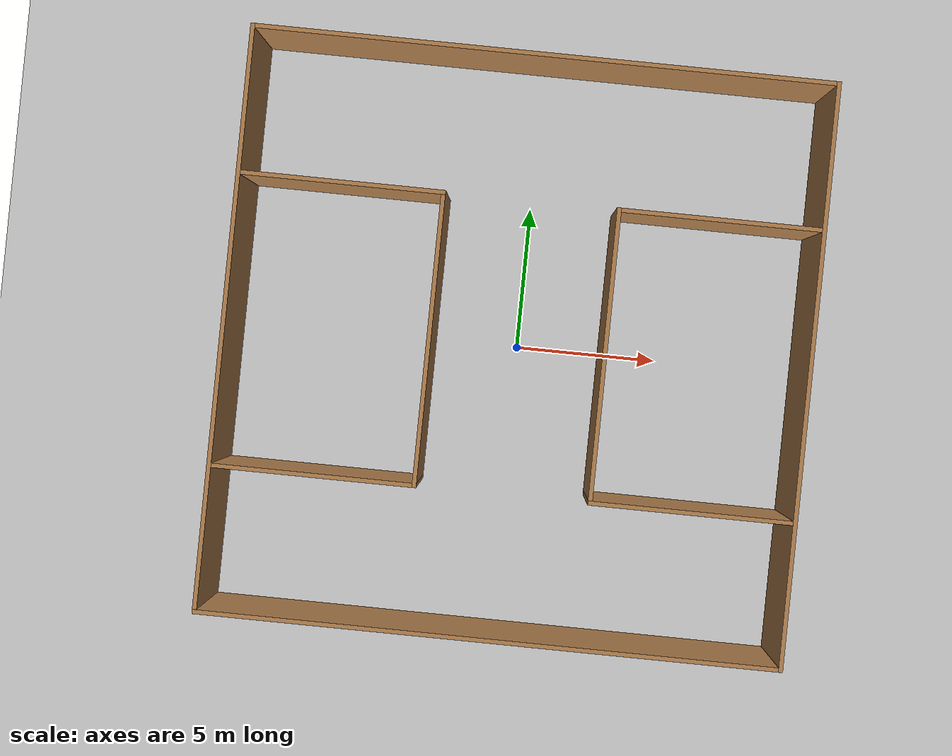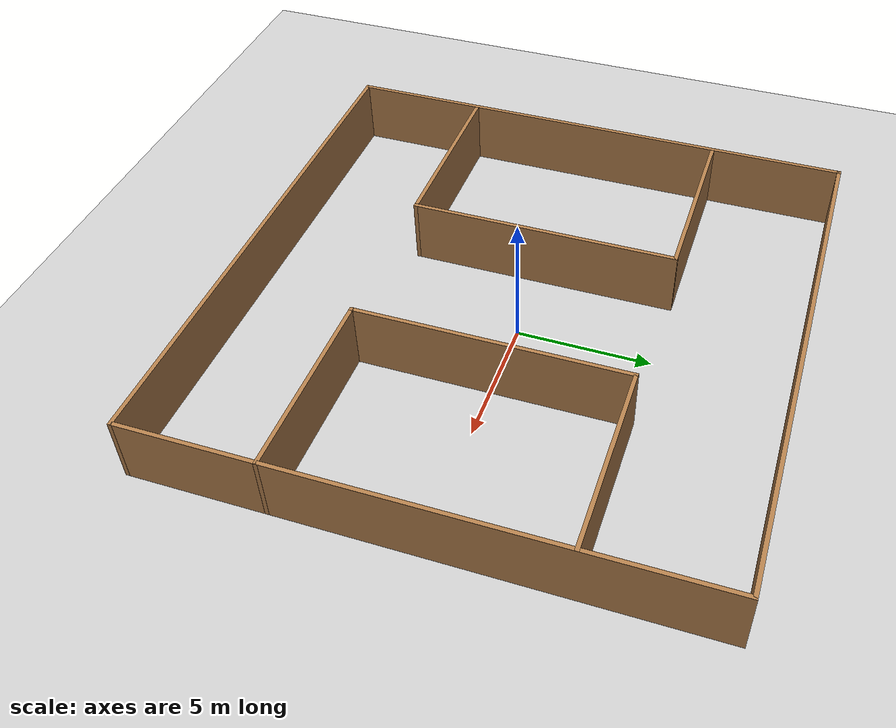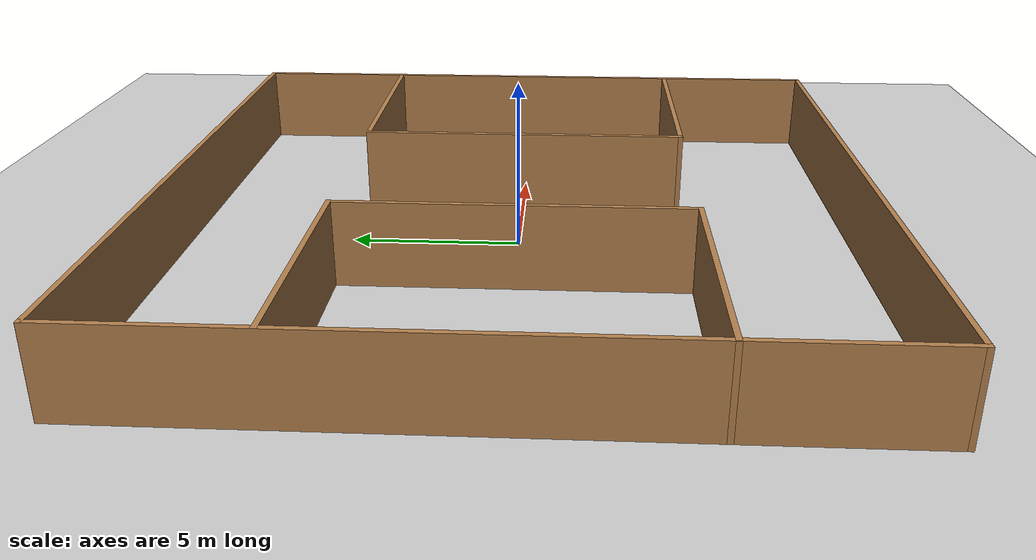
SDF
<sdf version="1.6">
 <world name="default">
  <light name="sun" type="directional">
   <pose>0 0 10 0 -0 0</pose>
   <diffuse>0.8 0.8 0.8 1</diffuse>
   <specular>0.2 0.2 0.2 1</specular>
   <attenuation>
    <range>1000</range>
    <constant>0.9</constant>
    <linear>0.01</linear>
    <quadratic>0.001</quadratic>
   </attenuation>
   <direction>-0.5 0.1 -0.9</direction>
  </light>
  <model name="ground_plane">
   <static>1</static>
   <link name="link">
    <collision name="collision">
     <geometry><plane><normal>0 0 1</normal><size>100 100</size></plane></geometry>
     <surface>
      <contact><collide_bitmask>65535</collide_bitmask></contact>
      <friction><ode><mu>100</mu><mu2>50</mu2></ode></friction>
     </surface>
    </collision>
    <visual name="visual">
     <cast_shadows>0</cast_shadows>
     <geometry><plane><normal>0 0 1</normal><size>100 100</size></plane></geometry>
     <material>
      <script><uri>file://media/materials/scripts/gazebo.material</uri><name>Gazebo/Grey</name></script>
     </material>
    </visual>
   </link>
  </model>
  <gravity>0 0 -9.8</gravity>
  <magnetic_field>6e-06 2.3e-05 -4.2e-05</magnetic_field>
  <atmosphere type="adiabatic"/>
  <physics name="default_physics" default="0" type="ode">
   <max_step_size>0.001</max_step_size>
   <real_time_factor>1</real_time_factor>
   <real_time_update_rate>1000</real_time_update_rate>
  </physics>
  <scene><ambient>0.4 0.4 0.4 1</ambient><background>0.7 0.7 0.7 1</background><shadows>1</shadows></scene>
  <audio><device>default</device></audio>
  <spherical_coordinates>
   <surface_model>EARTH_WGS84</surface_model>
   <latitude_deg>0</latitude_deg>
   <longitude_deg>0</longitude_deg>
   <elevation>0</elevation>
   <heading_deg>0</heading_deg>
  </spherical_coordinates>
  <model name="surroundings">
   <link name="Wall_0">
    <collision name="Wall_0_Collision">
     <geometry><box><size>20.15 0.15 2.5</size></box></geometry>
     <pose>0 0 1.25 0 -0 0</pose>
    </collision>
    <visual name="Wall_0_Visual">
     <pose>0 0 1.25 0 -0 0</pose>
     <geometry><box><size>20.15 0.15 2.5</size></box></geometry>
     <material>
      <script><uri>file://media/materials/scripts/gazebo.material</uri><name>Gazebo/Wood</name></script>
      <ambient>1 1 1 1</ambient>
     </material>
     <meta><layer>0</layer></meta>
    </visual>
    <pose>10 0 0 0 -0 -1.5708</pose>
   </link>
   <link name="Wall_1">
    <collision name="Wall_1_Collision">
     <geometry><box><size>20.15 0.15 2.5</size></box></geometry>
     <pose>0 0 1.25 0 -0 0</pose>
    </collision>
    <visual name="Wall_1_Visual">
     <pose>0 0 1.25 0 -0 0</pose>
     <geometry><box><size>20.15 0.15 2.5</size></box></geometry>
     <material>
      <script><uri>file://media/materials/scripts/gazebo.material</uri><name>Gazebo/Wood</name></script>
      <ambient>1 1 1 1</ambient>
     </material>
     <meta><layer>0</layer></meta>
    </visual>
    <pose>0 -10 0 0 -0 3.14159</pose>
   </link>
   <link name="Wall_2">
    <collision name="Wall_2_Collision">
     <geometry><box><size>20.15 0.15 2.5</size></box></geometry>
     <pose>0 0 1.25 0 -0 0</pose>
    </collision>
    <visual name="Wall_2_Visual">
     <pose>0 0 1.25 0 -0 0</pose>
     <geometry><box><size>20.15 0.15 2.5</size></box></geometry>
     <material>
      <script><uri>file://media/materials/scripts/gazebo.material</uri><name>Gazebo/Wood</name></script>
      <ambient>1 1 1 1</ambient>
     </material>
     <meta><layer>0</layer></meta>
    </visual>
    <pose>-10 0 0 0 -0 1.5708</pose>
   </link>
   <link name="Wall_3">
    <collision name="Wall_3_Collision">
     <geometry><box><size>20.15 0.15 2.5</size></box></geometry>
     <pose>0 0 1.25 0 -0 0</pose>
    </collision>
    <visual name="Wall_3_Visual">
     <pose>0 0 1.25 0 -0 0</pose>
     <geometry><box><size>20.15 0.15 2.5</size></box></geometry>
     <material>
      <script><uri>file://media/materials/scripts/gazebo.material</uri><name>Gazebo/Wood</name></script>
      <ambient>1 1 1 1</ambient>
     </material>
     <meta><layer>0</layer></meta>
    </visual>
    <pose>0 10 0 0 -0 0</pose>
   </link>
   <static>1</static>
  </model>
  <model name="model1">
   <link name="Wall_10">
    <collision name="Wall_10_Collision">
     <geometry><box><size>7.15 0.15 2.5</size></box></geometry>
     <pose>0 0 1.25 0 -0 0</pose>
    </collision>
    <visual name="Wall_10_Visual">
     <pose>0 0 1.25 0 -0 0</pose>
     <geometry><box><size>7.15 0.15 2.5</size></box></geometry>
     <material>
      <script><uri>file://media/materials/scripts/gazebo.material</uri><name>Gazebo/Wood</name></script>
      <ambient>1 1 1 1</ambient>
     </material>
     <meta><layer>0</layer></meta>
    </visual>
    <pose>6.5 -5 0 0 -0 3.14159</pose>
   </link>
   <link name="Wall_11">
    <collision name="Wall_11_Collision">
     <geometry><box><size>10.15 0.15 2.5</size></box></geometry>
     <pose>0 0 1.25 0 -0 0</pose>
    </collision>
    <visual name="Wall_11_Visual">
     <pose>0 0 1.25 0 -0 0</pose>
     <geometry><box><size>10.15 0.15 2.5</size></box></geometry>
     <material>
      <script><uri>file://media/materials/scripts/gazebo.material</uri><name>Gazebo/Wood</name></script>
      <ambient>1 1 1 1</ambient>
     </material>
     <meta><layer>0</layer></meta>
    </visual>
    <pose>3 0 0 0 -0 1.5708</pose>
   </link>
   <link name="Wall_12">
    <collision name="Wall_12_Collision">
     <geometry><box><size>7.15 0.15 2.5</size></box></geometry>
     <pose>0 0 1.25 0 -0 0</pose>
    </collision>
    <visual name="Wall_12_Visual">
     <pose>0 0 1.25 0 -0 0</pose>
     <geometry><box><size>7.15 0.15 2.5</size></box></geometry>
     <material>
      <script><uri>file://media/materials/scripts/gazebo.material</uri><name>Gazebo/Wood</name></script>
      <ambient>1 1 1 1</ambient>
     </material>
     <meta><layer>0</layer></meta>
    </visual>
    <pose>6.5 5 0 0 -0 0</pose>
   </link>
   <link name="Wall_5">
    <collision name="Wall_5_Collision">
     <geometry><box><size>7.15 0.15 2.5</size></box></geometry>
     <pose>0 0 1.25 0 -0 0</pose>
    </collision>
    <visual name="Wall_5_Visual">
     <pose>0 0 1.25 0 -0 0</pose>
     <geometry><box><size>7.15 0.15 2.5</size></box></geometry>
     <material>
      <script><uri>file://media/materials/scripts/gazebo.material</uri><name>Gazebo/Wood</name></script>
      <ambient>1 1 1 1</ambient>
     </material>
     <meta><layer>0</layer></meta>
    </visual>
    <pose>-6.5 5 0 0 -0 0</pose>
   </link>
   <link name="Wall_6">
    <collision name="Wall_6_Collision">
     <geometry><box><size>10.15 0.15 2.5</size></box></geometry>
     <pose>0 0 1.25 0 -0 0</pose>
    </collision>
    <visual name="Wall_6_Visual">
     <pose>0 0 1.25 0 -0 0</pose>
     <geometry><box><size>10.15 0.15 2.5</size></box></geometry>
     <material>
      <script><uri>file://media/materials/scripts/gazebo.material</uri><name>Gazebo/Wood</name></script>
      <ambient>1 1 1 1</ambient>
     </material>
     <meta><layer>0</layer></meta>
    </visual>
    <pose>-3 0 0 0 -0 -1.5708</pose>
   </link>
   <link name="Wall_7">
    <collision name="Wall_7_Collision">
     <geometry><box><size>7.15 0.15 2.5</size></box></geometry>
     <pose>0 0 1.25 0 -0 0</pose>
    </collision>
    <visual name="Wall_7_Visual">
     <pose>0 0 1.25 0 -0 0</pose>
     <geometry><box><size>7.15 0.15 2.5</size></box></geometry>
     <material>
      <script><uri>file://media/materials/scripts/gazebo.material</uri><name>Gazebo/Wood</name></script>
      <ambient>1 1 1 1</ambient>
     </material>
     <meta><layer>0</layer></meta>
    </visual>
    <pose>-6.5 -5 0 0 -0 3.14159</pose>
   </link>
   <static>1</static>
  </model>
  <plugin filename="libcollision_map_creator.so" name="collision_map_creator"/>
 </world>
</sdf>
